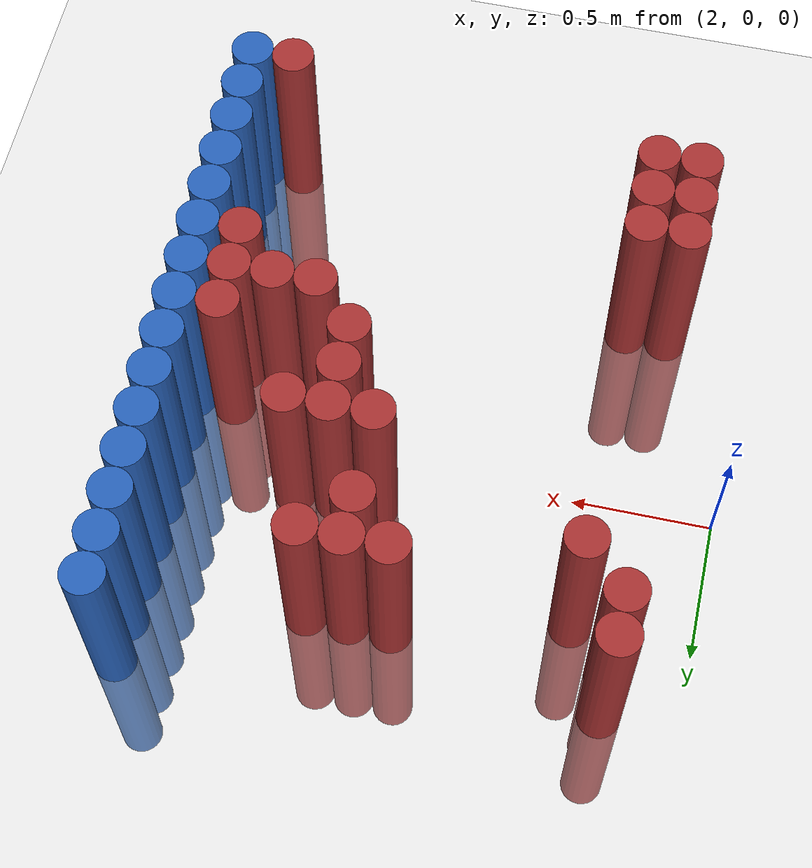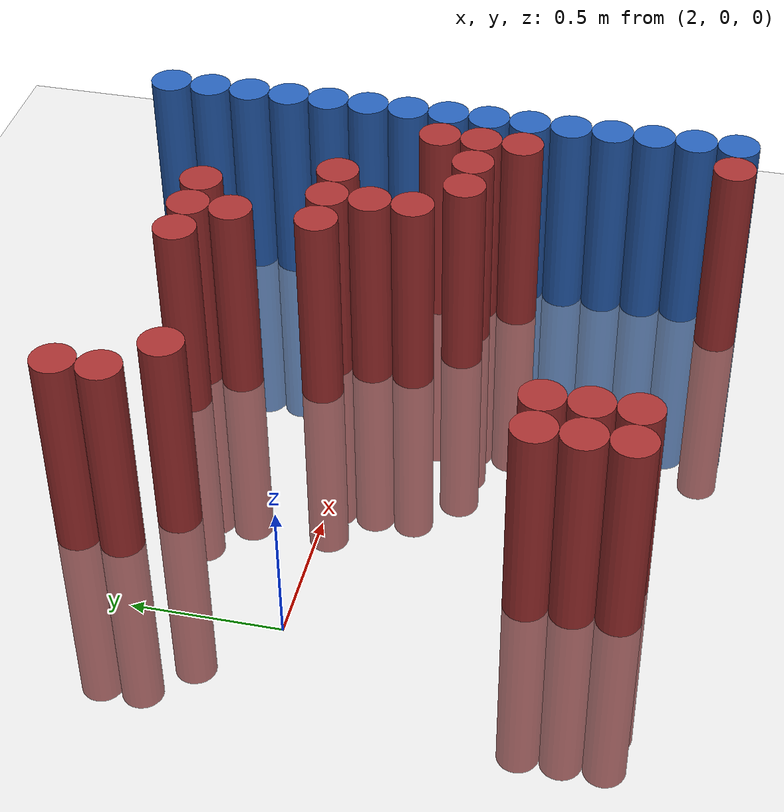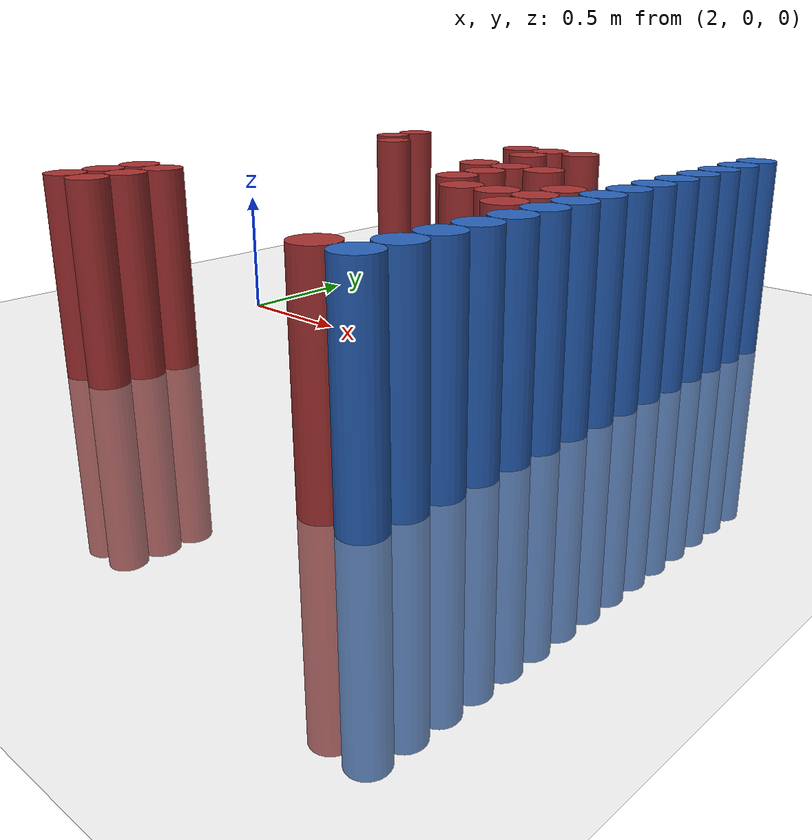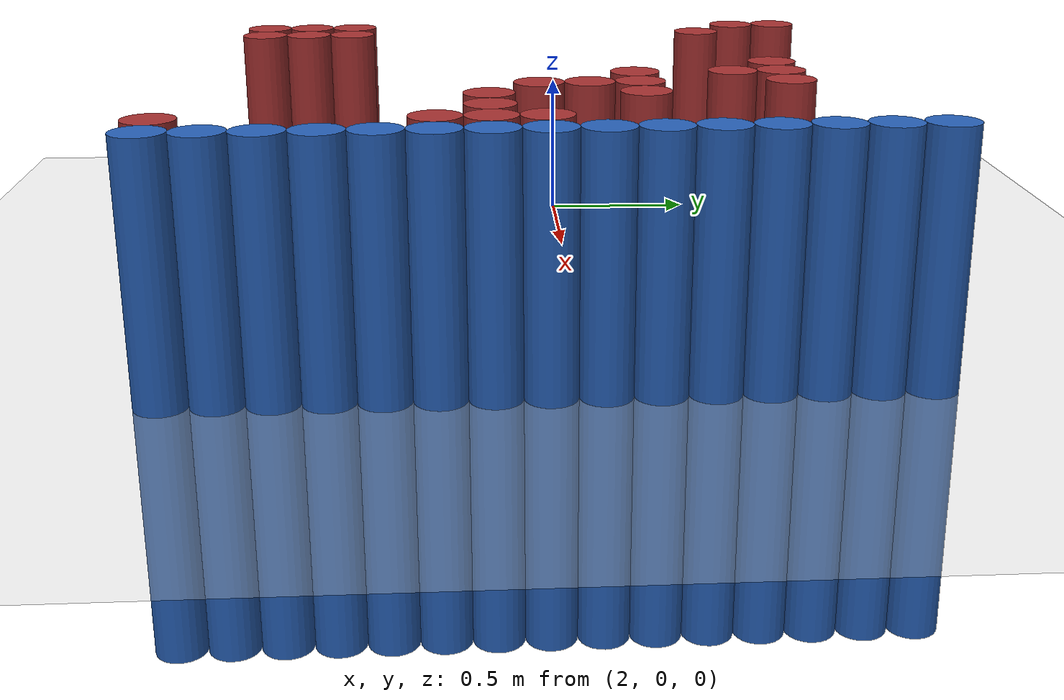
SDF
<sdf version="1.6">
 <world name="default">
  <model name="ground_plane">
   <static>1</static>
   <link name="link">
    <collision name="collision">
     <geometry><plane><normal>0 0 1</normal><size>100 100</size></plane></geometry>
     <surface><friction><ode><mu>100</mu><mu2>50</mu2></ode></friction></surface>
    </collision>
    <visual name="visual">
     <cast_shadows>0</cast_shadows>
     <geometry><plane><normal>0 0 1</normal><size>100 100</size></plane></geometry>
     <material>
      <script><uri>file://media/materials/scripts/gazebo.material</uri><name>Gazebo/Grey</name></script>
     </material>
    </visual>
   </link>
  </model>
  <model name="unit_cylinder_98">
   <static>1</static>
   <pose>3.925000 -1.175000 0.000000 0.000000 0.000000 0.000000</pose>
   <link name="link">
    <inertial>
     <mass>1</mass>
     <inertia><ixx>0.145833</ixx><ixy>0</ixy><ixz>0</ixz><iyy>0.145833</iyy><iyz>0</iyz><izz>0.125</izz></inertia>
    </inertial>
    <collision name="collision">
     <geometry><cylinder><radius>0.075000</radius><length>1.5</length></cylinder></geometry>
    </collision>
    <visual name="visual">
     <geometry><cylinder><radius>0.075000</radius><length>1.5</length></cylinder></geometry>
     <material>
      <ambient>0.152000 0.379000 0.720000 1</ambient>
      <diffuse>0.152000 0.379000 0.720000 1</diffuse>
     </material>
     <material>
      <script><name>Gazebo/Grey</name><uri>file://media/materials/scripts/gazebo.material</uri></script>
     </material>
    </visual>
   </link>
  </model>
  <model name="unit_cylinder_100">
   <static>1</static>
   <pose>3.925000 -1.025000 0.000000 0.000000 0.000000 0.000000</pose>
   <link name="link">
    <inertial>
     <mass>1</mass>
     <inertia><ixx>0.145833</ixx><ixy>0</ixy><ixz>0</ixz><iyy>0.145833</iyy><iyz>0</iyz><izz>0.125</izz></inertia>
    </inertial>
    <collision name="collision">
     <geometry><cylinder><radius>0.075000</radius><length>1.5</length></cylinder></geometry>
    </collision>
    <visual name="visual">
     <geometry><cylinder><radius>0.075000</radius><length>1.5</length></cylinder></geometry>
     <material>
      <ambient>0.152000 0.379000 0.720000 1</ambient>
      <diffuse>0.152000 0.379000 0.720000 1</diffuse>
     </material>
     <material>
      <script><name>Gazebo/Grey</name><uri>file://media/materials/scripts/gazebo.material</uri></script>
     </material>
    </visual>
   </link>
  </model>
  <model name="unit_cylinder_102">
   <static>1</static>
   <pose>3.925000 -0.875000 0.000000 0.000000 0.000000 0.000000</pose>
   <link name="link">
    <inertial>
     <mass>1</mass>
     <inertia><ixx>0.145833</ixx><ixy>0</ixy><ixz>0</ixz><iyy>0.145833</iyy><iyz>0</iyz><izz>0.125</izz></inertia>
    </inertial>
    <collision name="collision">
     <geometry><cylinder><radius>0.075000</radius><length>1.5</length></cylinder></geometry>
    </collision>
    <visual name="visual">
     <geometry><cylinder><radius>0.075000</radius><length>1.5</length></cylinder></geometry>
     <material>
      <ambient>0.152000 0.379000 0.720000 1</ambient>
      <diffuse>0.152000 0.379000 0.720000 1</diffuse>
     </material>
     <material>
      <script><name>Gazebo/Grey</name><uri>file://media/materials/scripts/gazebo.material</uri></script>
     </material>
    </visual>
   </link>
  </model>
  <model name="unit_cylinder_104">
   <static>1</static>
   <pose>3.925000 -0.725000 0.000000 0.000000 0.000000 0.000000</pose>
   <link name="link">
    <inertial>
     <mass>1</mass>
     <inertia><ixx>0.145833</ixx><ixy>0</ixy><ixz>0</ixz><iyy>0.145833</iyy><iyz>0</iyz><izz>0.125</izz></inertia>
    </inertial>
    <collision name="collision">
     <geometry><cylinder><radius>0.075000</radius><length>1.5</length></cylinder></geometry>
    </collision>
    <visual name="visual">
     <geometry><cylinder><radius>0.075000</radius><length>1.5</length></cylinder></geometry>
     <material>
      <ambient>0.152000 0.379000 0.720000 1</ambient>
      <diffuse>0.152000 0.379000 0.720000 1</diffuse>
     </material>
     <material>
      <script><name>Gazebo/Grey</name><uri>file://media/materials/scripts/gazebo.material</uri></script>
     </material>
    </visual>
   </link>
  </model>
  <model name="unit_cylinder_106">
   <static>1</static>
   <pose>3.925000 -0.575000 0.000000 0.000000 0.000000 0.000000</pose>
   <link name="link">
    <inertial>
     <mass>1</mass>
     <inertia><ixx>0.145833</ixx><ixy>0</ixy><ixz>0</ixz><iyy>0.145833</iyy><iyz>0</iyz><izz>0.125</izz></inertia>
    </inertial>
    <collision name="collision">
     <geometry><cylinder><radius>0.075000</radius><length>1.5</length></cylinder></geometry>
    </collision>
    <visual name="visual">
     <geometry><cylinder><radius>0.075000</radius><length>1.5</length></cylinder></geometry>
     <material>
      <ambient>0.152000 0.379000 0.720000 1</ambient>
      <diffuse>0.152000 0.379000 0.720000 1</diffuse>
     </material>
     <material>
      <script><name>Gazebo/Grey</name><uri>file://media/materials/scripts/gazebo.material</uri></script>
     </material>
    </visual>
   </link>
  </model>
  <model name="unit_cylinder_108">
   <static>1</static>
   <pose>3.925000 -0.425000 0.000000 0.000000 0.000000 0.000000</pose>
   <link name="link">
    <inertial>
     <mass>1</mass>
     <inertia><ixx>0.145833</ixx><ixy>0</ixy><ixz>0</ixz><iyy>0.145833</iyy><iyz>0</iyz><izz>0.125</izz></inertia>
    </inertial>
    <collision name="collision">
     <geometry><cylinder><radius>0.075000</radius><length>1.5</length></cylinder></geometry>
    </collision>
    <visual name="visual">
     <geometry><cylinder><radius>0.075000</radius><length>1.5</length></cylinder></geometry>
     <material>
      <ambient>0.152000 0.379000 0.720000 1</ambient>
      <diffuse>0.152000 0.379000 0.720000 1</diffuse>
     </material>
     <material>
      <script><name>Gazebo/Grey</name><uri>file://media/materials/scripts/gazebo.material</uri></script>
     </material>
    </visual>
   </link>
  </model>
  <model name="unit_cylinder_110">
   <static>1</static>
   <pose>3.925000 -0.275000 0.000000 0.000000 0.000000 0.000000</pose>
   <link name="link">
    <inertial>
     <mass>1</mass>
     <inertia><ixx>0.145833</ixx><ixy>0</ixy><ixz>0</ixz><iyy>0.145833</iyy><iyz>0</iyz><izz>0.125</izz></inertia>
    </inertial>
    <collision name="collision">
     <geometry><cylinder><radius>0.075000</radius><length>1.5</length></cylinder></geometry>
    </collision>
    <visual name="visual">
     <geometry><cylinder><radius>0.075000</radius><length>1.5</length></cylinder></geometry>
     <material>
      <ambient>0.152000 0.379000 0.720000 1</ambient>
      <diffuse>0.152000 0.379000 0.720000 1</diffuse>
     </material>
     <material>
      <script><name>Gazebo/Grey</name><uri>file://media/materials/scripts/gazebo.material</uri></script>
     </material>
    </visual>
   </link>
  </model>
  <model name="unit_cylinder_112">
   <static>1</static>
   <pose>3.925000 -0.125000 0.000000 0.000000 0.000000 0.000000</pose>
   <link name="link">
    <inertial>
     <mass>1</mass>
     <inertia><ixx>0.145833</ixx><ixy>0</ixy><ixz>0</ixz><iyy>0.145833</iyy><iyz>0</iyz><izz>0.125</izz></inertia>
    </inertial>
    <collision name="collision">
     <geometry><cylinder><radius>0.075000</radius><length>1.5</length></cylinder></geometry>
    </collision>
    <visual name="visual">
     <geometry><cylinder><radius>0.075000</radius><length>1.5</length></cylinder></geometry>
     <material>
      <ambient>0.152000 0.379000 0.720000 1</ambient>
      <diffuse>0.152000 0.379000 0.720000 1</diffuse>
     </material>
     <material>
      <script><name>Gazebo/Grey</name><uri>file://media/materials/scripts/gazebo.material</uri></script>
     </material>
    </visual>
   </link>
  </model>
  <model name="unit_cylinder_114">
   <static>1</static>
   <pose>3.925000 0.025000 0.000000 0.000000 0.000000 0.000000</pose>
   <link name="link">
    <inertial>
     <mass>1</mass>
     <inertia><ixx>0.145833</ixx><ixy>0</ixy><ixz>0</ixz><iyy>0.145833</iyy><iyz>0</iyz><izz>0.125</izz></inertia>
    </inertial>
    <collision name="collision">
     <geometry><cylinder><radius>0.075000</radius><length>1.5</length></cylinder></geometry>
    </collision>
    <visual name="visual">
     <geometry><cylinder><radius>0.075000</radius><length>1.5</length></cylinder></geometry>
     <material>
      <ambient>0.152000 0.379000 0.720000 1</ambient>
      <diffuse>0.152000 0.379000 0.720000 1</diffuse>
     </material>
     <material>
      <script><name>Gazebo/Grey</name><uri>file://media/materials/scripts/gazebo.material</uri></script>
     </material>
    </visual>
   </link>
  </model>
  <model name="unit_cylinder_116">
   <static>1</static>
   <pose>3.925000 0.175000 0.000000 0.000000 0.000000 0.000000</pose>
   <link name="link">
    <inertial>
     <mass>1</mass>
     <inertia><ixx>0.145833</ixx><ixy>0</ixy><ixz>0</ixz><iyy>0.145833</iyy><iyz>0</iyz><izz>0.125</izz></inertia>
    </inertial>
    <collision name="collision">
     <geometry><cylinder><radius>0.075000</radius><length>1.5</length></cylinder></geometry>
    </collision>
    <visual name="visual">
     <geometry><cylinder><radius>0.075000</radius><length>1.5</length></cylinder></geometry>
     <material>
      <ambient>0.152000 0.379000 0.720000 1</ambient>
      <diffuse>0.152000 0.379000 0.720000 1</diffuse>
     </material>
     <material>
      <script><name>Gazebo/Grey</name><uri>file://media/materials/scripts/gazebo.material</uri></script>
     </material>
    </visual>
   </link>
  </model>
  <model name="unit_cylinder_118">
   <static>1</static>
   <pose>3.925000 0.325000 0.000000 0.000000 0.000000 0.000000</pose>
   <link name="link">
    <inertial>
     <mass>1</mass>
     <inertia><ixx>0.145833</ixx><ixy>0</ixy><ixz>0</ixz><iyy>0.145833</iyy><iyz>0</iyz><izz>0.125</izz></inertia>
    </inertial>
    <collision name="collision">
     <geometry><cylinder><radius>0.075000</radius><length>1.5</length></cylinder></geometry>
    </collision>
    <visual name="visual">
     <geometry><cylinder><radius>0.075000</radius><length>1.5</length></cylinder></geometry>
     <material>
      <ambient>0.152000 0.379000 0.720000 1</ambient>
      <diffuse>0.152000 0.379000 0.720000 1</diffuse>
     </material>
     <material>
      <script><name>Gazebo/Grey</name><uri>file://media/materials/scripts/gazebo.material</uri></script>
     </material>
    </visual>
   </link>
  </model>
  <model name="unit_cylinder_120">
   <static>1</static>
   <pose>3.925000 0.475000 0.000000 0.000000 0.000000 0.000000</pose>
   <link name="link">
    <inertial>
     <mass>1</mass>
     <inertia><ixx>0.145833</ixx><ixy>0</ixy><ixz>0</ixz><iyy>0.145833</iyy><iyz>0</iyz><izz>0.125</izz></inertia>
    </inertial>
    <collision name="collision">
     <geometry><cylinder><radius>0.075000</radius><length>1.5</length></cylinder></geometry>
    </collision>
    <visual name="visual">
     <geometry><cylinder><radius>0.075000</radius><length>1.5</length></cylinder></geometry>
     <material>
      <ambient>0.152000 0.379000 0.720000 1</ambient>
      <diffuse>0.152000 0.379000 0.720000 1</diffuse>
     </material>
     <material>
      <script><name>Gazebo/Grey</name><uri>file://media/materials/scripts/gazebo.material</uri></script>
     </material>
    </visual>
   </link>
  </model>
  <model name="unit_cylinder_122">
   <static>1</static>
   <pose>3.925000 0.625000 0.000000 0.000000 0.000000 0.000000</pose>
   <link name="link">
    <inertial>
     <mass>1</mass>
     <inertia><ixx>0.145833</ixx><ixy>0</ixy><ixz>0</ixz><iyy>0.145833</iyy><iyz>0</iyz><izz>0.125</izz></inertia>
    </inertial>
    <collision name="collision">
     <geometry><cylinder><radius>0.075000</radius><length>1.5</length></cylinder></geometry>
    </collision>
    <visual name="visual">
     <geometry><cylinder><radius>0.075000</radius><length>1.5</length></cylinder></geometry>
     <material>
      <ambient>0.152000 0.379000 0.720000 1</ambient>
      <diffuse>0.152000 0.379000 0.720000 1</diffuse>
     </material>
     <material>
      <script><name>Gazebo/Grey</name><uri>file://media/materials/scripts/gazebo.material</uri></script>
     </material>
    </visual>
   </link>
  </model>
  <model name="unit_cylinder_124">
   <static>1</static>
   <pose>3.925000 0.775000 0.000000 0.000000 0.000000 0.000000</pose>
   <link name="link">
    <inertial>
     <mass>1</mass>
     <inertia><ixx>0.145833</ixx><ixy>0</ixy><ixz>0</ixz><iyy>0.145833</iyy><iyz>0</iyz><izz>0.125</izz></inertia>
    </inertial>
    <collision name="collision">
     <geometry><cylinder><radius>0.075000</radius><length>1.5</length></cylinder></geometry>
    </collision>
    <visual name="visual">
     <geometry><cylinder><radius>0.075000</radius><length>1.5</length></cylinder></geometry>
     <material>
      <ambient>0.152000 0.379000 0.720000 1</ambient>
      <diffuse>0.152000 0.379000 0.720000 1</diffuse>
     </material>
     <material>
      <script><name>Gazebo/Grey</name><uri>file://media/materials/scripts/gazebo.material</uri></script>
     </material>
    </visual>
   </link>
  </model>
  <model name="unit_cylinder_126">
   <static>1</static>
   <pose>3.925000 0.925000 0.000000 0.000000 0.000000 0.000000</pose>
   <link name="link">
    <inertial>
     <mass>1</mass>
     <inertia><ixx>0.145833</ixx><ixy>0</ixy><ixz>0</ixz><iyy>0.145833</iyy><iyz>0</iyz><izz>0.125</izz></inertia>
    </inertial>
    <collision name="collision">
     <geometry><cylinder><radius>0.075000</radius><length>1.5</length></cylinder></geometry>
    </collision>
    <visual name="visual">
     <geometry><cylinder><radius>0.075000</radius><length>1.5</length></cylinder></geometry>
     <material>
      <ambient>0.152000 0.379000 0.720000 1</ambient>
      <diffuse>0.152000 0.379000 0.720000 1</diffuse>
     </material>
     <material>
      <script><name>Gazebo/Grey</name><uri>file://media/materials/scripts/gazebo.material</uri></script>
     </material>
    </visual>
   </link>
  </model>
  <model name="unit_cylinder_420">
   <static>1</static>
   <pose>2.275000 -1.025000 0.000000 0.000000 0.000000 0.000000</pose>
   <link name="link">
    <inertial>
     <mass>1</mass>
     <inertia><ixx>0.145833</ixx><ixy>0</ixy><ixz>0</ixz><iyy>0.145833</iyy><iyz>0</iyz><izz>0.125</izz></inertia>
    </inertial>
    <collision name="collision">
     <geometry><cylinder><radius>0.075000</radius><length>1.5</length></cylinder></geometry>
    </collision>
    <visual name="visual">
     <geometry><cylinder><radius>0.075000</radius><length>1.5</length></cylinder></geometry>
     <material>
      <ambient>0.648000 0.192000 0.192000 1</ambient>
      <diffuse>0.648000 0.192000 0.192000 1</diffuse>
     </material>
     <material>
      <script><name>Gazebo/Grey</name><uri>file://media/materials/scripts/gazebo.material</uri></script>
     </material>
    </visual>
   </link>
  </model>
  <model name="unit_cylinder_421">
   <static>1</static>
   <pose>2.275000 -0.875000 0.000000 0.000000 0.000000 0.000000</pose>
   <link name="link">
    <inertial>
     <mass>1</mass>
     <inertia><ixx>0.145833</ixx><ixy>0</ixy><ixz>0</ixz><iyy>0.145833</iyy><iyz>0</iyz><izz>0.125</izz></inertia>
    </inertial>
    <collision name="collision">
     <geometry><cylinder><radius>0.075000</radius><length>1.5</length></cylinder></geometry>
    </collision>
    <visual name="visual">
     <geometry><cylinder><radius>0.075000</radius><length>1.5</length></cylinder></geometry>
     <material>
      <ambient>0.648000 0.192000 0.192000 1</ambient>
      <diffuse>0.648000 0.192000 0.192000 1</diffuse>
     </material>
     <material>
      <script><name>Gazebo/Grey</name><uri>file://media/materials/scripts/gazebo.material</uri></script>
     </material>
    </visual>
   </link>
  </model>
  <model name="unit_cylinder_422">
   <static>1</static>
   <pose>2.275000 -0.725000 0.000000 0.000000 0.000000 0.000000</pose>
   <link name="link">
    <inertial>
     <mass>1</mass>
     <inertia><ixx>0.145833</ixx><ixy>0</ixy><ixz>0</ixz><iyy>0.145833</iyy><iyz>0</iyz><izz>0.125</izz></inertia>
    </inertial>
    <collision name="collision">
     <geometry><cylinder><radius>0.075000</radius><length>1.5</length></cylinder></geometry>
    </collision>
    <visual name="visual">
     <geometry><cylinder><radius>0.075000</radius><length>1.5</length></cylinder></geometry>
     <material>
      <ambient>0.648000 0.192000 0.192000 1</ambient>
      <diffuse>0.648000 0.192000 0.192000 1</diffuse>
     </material>
     <material>
      <script><name>Gazebo/Grey</name><uri>file://media/materials/scripts/gazebo.material</uri></script>
     </material>
    </visual>
   </link>
  </model>
  <model name="unit_cylinder_423">
   <static>1</static>
   <pose>2.275000 0.625000 0.000000 0.000000 0.000000 0.000000</pose>
   <link name="link">
    <inertial>
     <mass>1</mass>
     <inertia><ixx>0.145833</ixx><ixy>0</ixy><ixz>0</ixz><iyy>0.145833</iyy><iyz>0</iyz><izz>0.125</izz></inertia>
    </inertial>
    <collision name="collision">
     <geometry><cylinder><radius>0.075000</radius><length>1.5</length></cylinder></geometry>
    </collision>
    <visual name="visual">
     <geometry><cylinder><radius>0.075000</radius><length>1.5</length></cylinder></geometry>
     <material>
      <ambient>0.648000 0.192000 0.192000 1</ambient>
      <diffuse>0.648000 0.192000 0.192000 1</diffuse>
     </material>
     <material>
      <script><name>Gazebo/Grey</name><uri>file://media/materials/scripts/gazebo.material</uri></script>
     </material>
    </visual>
   </link>
  </model>
  <model name="unit_cylinder_424">
   <static>1</static>
   <pose>2.275000 0.775000 0.000000 0.000000 0.000000 0.000000</pose>
   <link name="link">
    <inertial>
     <mass>1</mass>
     <inertia><ixx>0.145833</ixx><ixy>0</ixy><ixz>0</ixz><iyy>0.145833</iyy><iyz>0</iyz><izz>0.125</izz></inertia>
    </inertial>
    <collision name="collision">
     <geometry><cylinder><radius>0.075000</radius><length>1.5</length></cylinder></geometry>
    </collision>
    <visual name="visual">
     <geometry><cylinder><radius>0.075000</radius><length>1.5</length></cylinder></geometry>
     <material>
      <ambient>0.648000 0.192000 0.192000 1</ambient>
      <diffuse>0.648000 0.192000 0.192000 1</diffuse>
     </material>
     <material>
      <script><name>Gazebo/Grey</name><uri>file://media/materials/scripts/gazebo.material</uri></script>
     </material>
    </visual>
   </link>
  </model>
  <model name="unit_cylinder_427">
   <static>1</static>
   <pose>2.425000 -1.025000 0.000000 0.000000 0.000000 0.000000</pose>
   <link name="link">
    <inertial>
     <mass>1</mass>
     <inertia><ixx>0.145833</ixx><ixy>0</ixy><ixz>0</ixz><iyy>0.145833</iyy><iyz>0</iyz><izz>0.125</izz></inertia>
    </inertial>
    <collision name="collision">
     <geometry><cylinder><radius>0.075000</radius><length>1.5</length></cylinder></geometry>
    </collision>
    <visual name="visual">
     <geometry><cylinder><radius>0.075000</radius><length>1.5</length></cylinder></geometry>
     <material>
      <ambient>0.648000 0.192000 0.192000 1</ambient>
      <diffuse>0.648000 0.192000 0.192000 1</diffuse>
     </material>
     <material>
      <script><name>Gazebo/Grey</name><uri>file://media/materials/scripts/gazebo.material</uri></script>
     </material>
    </visual>
   </link>
  </model>
  <model name="unit_cylinder_428">
   <static>1</static>
   <pose>2.425000 -0.875000 0.000000 0.000000 0.000000 0.000000</pose>
   <link name="link">
    <inertial>
     <mass>1</mass>
     <inertia><ixx>0.145833</ixx><ixy>0</ixy><ixz>0</ixz><iyy>0.145833</iyy><iyz>0</iyz><izz>0.125</izz></inertia>
    </inertial>
    <collision name="collision">
     <geometry><cylinder><radius>0.075000</radius><length>1.5</length></cylinder></geometry>
    </collision>
    <visual name="visual">
     <geometry><cylinder><radius>0.075000</radius><length>1.5</length></cylinder></geometry>
     <material>
      <ambient>0.648000 0.192000 0.192000 1</ambient>
      <diffuse>0.648000 0.192000 0.192000 1</diffuse>
     </material>
     <material>
      <script><name>Gazebo/Grey</name><uri>file://media/materials/scripts/gazebo.material</uri></script>
     </material>
    </visual>
   </link>
  </model>
  <model name="unit_cylinder_429">
   <static>1</static>
   <pose>2.425000 -0.725000 0.000000 0.000000 0.000000 0.000000</pose>
   <link name="link">
    <inertial>
     <mass>1</mass>
     <inertia><ixx>0.145833</ixx><ixy>0</ixy><ixz>0</ixz><iyy>0.145833</iyy><iyz>0</iyz><izz>0.125</izz></inertia>
    </inertial>
    <collision name="collision">
     <geometry><cylinder><radius>0.075000</radius><length>1.5</length></cylinder></geometry>
    </collision>
    <visual name="visual">
     <geometry><cylinder><radius>0.075000</radius><length>1.5</length></cylinder></geometry>
     <material>
      <ambient>0.648000 0.192000 0.192000 1</ambient>
      <diffuse>0.648000 0.192000 0.192000 1</diffuse>
     </material>
     <material>
      <script><name>Gazebo/Grey</name><uri>file://media/materials/scripts/gazebo.material</uri></script>
     </material>
    </visual>
   </link>
  </model>
  <model name="unit_cylinder_430">
   <static>1</static>
   <pose>2.425000 0.475000 0.000000 0.000000 0.000000 0.000000</pose>
   <link name="link">
    <inertial>
     <mass>1</mass>
     <inertia><ixx>0.145833</ixx><ixy>0</ixy><ixz>0</ixz><iyy>0.145833</iyy><iyz>0</iyz><izz>0.125</izz></inertia>
    </inertial>
    <collision name="collision">
     <geometry><cylinder><radius>0.075000</radius><length>1.5</length></cylinder></geometry>
    </collision>
    <visual name="visual">
     <geometry><cylinder><radius>0.075000</radius><length>1.5</length></cylinder></geometry>
     <material>
      <ambient>0.648000 0.192000 0.192000 1</ambient>
      <diffuse>0.648000 0.192000 0.192000 1</diffuse>
     </material>
     <material>
      <script><name>Gazebo/Grey</name><uri>file://media/materials/scripts/gazebo.material</uri></script>
     </material>
    </visual>
   </link>
  </model>
  <model name="unit_cylinder_431">
   <static>1</static>
   <pose>3.025000 0.625000 0.000000 0.000000 0.000000 0.000000</pose>
   <link name="link">
    <inertial>
     <mass>1</mass>
     <inertia><ixx>0.145833</ixx><ixy>0</ixy><ixz>0</ixz><iyy>0.145833</iyy><iyz>0</iyz><izz>0.125</izz></inertia>
    </inertial>
    <collision name="collision">
     <geometry><cylinder><radius>0.075000</radius><length>1.5</length></cylinder></geometry>
    </collision>
    <visual name="visual">
     <geometry><cylinder><radius>0.075000</radius><length>1.5</length></cylinder></geometry>
     <material>
      <ambient>0.648000 0.192000 0.192000 1</ambient>
      <diffuse>0.648000 0.192000 0.192000 1</diffuse>
     </material>
     <material>
      <script><name>Gazebo/Grey</name><uri>file://media/materials/scripts/gazebo.material</uri></script>
     </material>
    </visual>
   </link>
  </model>
  <model name="unit_cylinder_438">
   <static>1</static>
   <pose>3.175000 0.175000 0.000000 0.000000 0.000000 0.000000</pose>
   <link name="link">
    <inertial>
     <mass>1</mass>
     <inertia><ixx>0.145833</ixx><ixy>0</ixy><ixz>0</ixz><iyy>0.145833</iyy><iyz>0</iyz><izz>0.125</izz></inertia>
    </inertial>
    <collision name="collision">
     <geometry><cylinder><radius>0.075000</radius><length>1.5</length></cylinder></geometry>
    </collision>
    <visual name="visual">
     <geometry><cylinder><radius>0.075000</radius><length>1.5</length></cylinder></geometry>
     <material>
      <ambient>0.648000 0.192000 0.192000 1</ambient>
      <diffuse>0.648000 0.192000 0.192000 1</diffuse>
     </material>
     <material>
      <script><name>Gazebo/Grey</name><uri>file://media/materials/scripts/gazebo.material</uri></script>
     </material>
    </visual>
   </link>
  </model>
  <model name="unit_cylinder_439">
   <static>1</static>
   <pose>3.175000 0.475000 0.000000 0.000000 0.000000 0.000000</pose>
   <link name="link">
    <inertial>
     <mass>1</mass>
     <inertia><ixx>0.145833</ixx><ixy>0</ixy><ixz>0</ixz><iyy>0.145833</iyy><iyz>0</iyz><izz>0.125</izz></inertia>
    </inertial>
    <collision name="collision">
     <geometry><cylinder><radius>0.075000</radius><length>1.5</length></cylinder></geometry>
    </collision>
    <visual name="visual">
     <geometry><cylinder><radius>0.075000</radius><length>1.5</length></cylinder></geometry>
     <material>
      <ambient>0.648000 0.192000 0.192000 1</ambient>
      <diffuse>0.648000 0.192000 0.192000 1</diffuse>
     </material>
     <material>
      <script><name>Gazebo/Grey</name><uri>file://media/materials/scripts/gazebo.material</uri></script>
     </material>
    </visual>
   </link>
  </model>
  <model name="unit_cylinder_440">
   <static>1</static>
   <pose>3.175000 0.625000 0.000000 0.000000 0.000000 0.000000</pose>
   <link name="link">
    <inertial>
     <mass>1</mass>
     <inertia><ixx>0.145833</ixx><ixy>0</ixy><ixz>0</ixz><iyy>0.145833</iyy><iyz>0</iyz><izz>0.125</izz></inertia>
    </inertial>
    <collision name="collision">
     <geometry><cylinder><radius>0.075000</radius><length>1.5</length></cylinder></geometry>
    </collision>
    <visual name="visual">
     <geometry><cylinder><radius>0.075000</radius><length>1.5</length></cylinder></geometry>
     <material>
      <ambient>0.648000 0.192000 0.192000 1</ambient>
      <diffuse>0.648000 0.192000 0.192000 1</diffuse>
     </material>
     <material>
      <script><name>Gazebo/Grey</name><uri>file://media/materials/scripts/gazebo.material</uri></script>
     </material>
    </visual>
   </link>
  </model>
  <model name="unit_cylinder_448">
   <static>1</static>
   <pose>3.325000 -0.125000 0.000000 0.000000 0.000000 0.000000</pose>
   <link name="link">
    <inertial>
     <mass>1</mass>
     <inertia><ixx>0.145833</ixx><ixy>0</ixy><ixz>0</ixz><iyy>0.145833</iyy><iyz>0</iyz><izz>0.125</izz></inertia>
    </inertial>
    <collision name="collision">
     <geometry><cylinder><radius>0.075000</radius><length>1.5</length></cylinder></geometry>
    </collision>
    <visual name="visual">
     <geometry><cylinder><radius>0.075000</radius><length>1.5</length></cylinder></geometry>
     <material>
      <ambient>0.648000 0.192000 0.192000 1</ambient>
      <diffuse>0.648000 0.192000 0.192000 1</diffuse>
     </material>
     <material>
      <script><name>Gazebo/Grey</name><uri>file://media/materials/scripts/gazebo.material</uri></script>
     </material>
    </visual>
   </link>
  </model>
  <model name="unit_cylinder_449">
   <static>1</static>
   <pose>3.325000 0.025000 0.000000 0.000000 0.000000 0.000000</pose>
   <link name="link">
    <inertial>
     <mass>1</mass>
     <inertia><ixx>0.145833</ixx><ixy>0</ixy><ixz>0</ixz><iyy>0.145833</iyy><iyz>0</iyz><izz>0.125</izz></inertia>
    </inertial>
    <collision name="collision">
     <geometry><cylinder><radius>0.075000</radius><length>1.5</length></cylinder></geometry>
    </collision>
    <visual name="visual">
     <geometry><cylinder><radius>0.075000</radius><length>1.5</length></cylinder></geometry>
     <material>
      <ambient>0.648000 0.192000 0.192000 1</ambient>
      <diffuse>0.648000 0.192000 0.192000 1</diffuse>
     </material>
     <material>
      <script><name>Gazebo/Grey</name><uri>file://media/materials/scripts/gazebo.material</uri></script>
     </material>
    </visual>
   </link>
  </model>
  <model name="unit_cylinder_450">
   <static>1</static>
   <pose>3.325000 0.175000 0.000000 0.000000 0.000000 0.000000</pose>
   <link name="link">
    <inertial>
     <mass>1</mass>
     <inertia><ixx>0.145833</ixx><ixy>0</ixy><ixz>0</ixz><iyy>0.145833</iyy><iyz>0</iyz><izz>0.125</izz></inertia>
    </inertial>
    <collision name="collision">
     <geometry><cylinder><radius>0.075000</radius><length>1.5</length></cylinder></geometry>
    </collision>
    <visual name="visual">
     <geometry><cylinder><radius>0.075000</radius><length>1.5</length></cylinder></geometry>
     <material>
      <ambient>0.648000 0.192000 0.192000 1</ambient>
      <diffuse>0.648000 0.192000 0.192000 1</diffuse>
     </material>
     <material>
      <script><name>Gazebo/Grey</name><uri>file://media/materials/scripts/gazebo.material</uri></script>
     </material>
    </visual>
   </link>
  </model>
  <model name="unit_cylinder_451">
   <static>1</static>
   <pose>3.325000 0.625000 0.000000 0.000000 0.000000 0.000000</pose>
   <link name="link">
    <inertial>
     <mass>1</mass>
     <inertia><ixx>0.145833</ixx><ixy>0</ixy><ixz>0</ixz><iyy>0.145833</iyy><iyz>0</iyz><izz>0.125</izz></inertia>
    </inertial>
    <collision name="collision">
     <geometry><cylinder><radius>0.075000</radius><length>1.5</length></cylinder></geometry>
    </collision>
    <visual name="visual">
     <geometry><cylinder><radius>0.075000</radius><length>1.5</length></cylinder></geometry>
     <material>
      <ambient>0.648000 0.192000 0.192000 1</ambient>
      <diffuse>0.648000 0.192000 0.192000 1</diffuse>
     </material>
     <material>
      <script><name>Gazebo/Grey</name><uri>file://media/materials/scripts/gazebo.material</uri></script>
     </material>
    </visual>
   </link>
  </model>
  <model name="unit_cylinder_456">
   <static>1</static>
   <pose>3.475000 -0.275000 0.000000 0.000000 0.000000 0.000000</pose>
   <link name="link">
    <inertial>
     <mass>1</mass>
     <inertia><ixx>0.145833</ixx><ixy>0</ixy><ixz>0</ixz><iyy>0.145833</iyy><iyz>0</iyz><izz>0.125</izz></inertia>
    </inertial>
    <collision name="collision">
     <geometry><cylinder><radius>0.075000</radius><length>1.5</length></cylinder></geometry>
    </collision>
    <visual name="visual">
     <geometry><cylinder><radius>0.075000</radius><length>1.5</length></cylinder></geometry>
     <material>
      <ambient>0.648000 0.192000 0.192000 1</ambient>
      <diffuse>0.648000 0.192000 0.192000 1</diffuse>
     </material>
     <material>
      <script><name>Gazebo/Grey</name><uri>file://media/materials/scripts/gazebo.material</uri></script>
     </material>
    </visual>
   </link>
  </model>
  <model name="unit_cylinder_457">
   <static>1</static>
   <pose>3.475000 0.175000 0.000000 0.000000 0.000000 0.000000</pose>
   <link name="link">
    <inertial>
     <mass>1</mass>
     <inertia><ixx>0.145833</ixx><ixy>0</ixy><ixz>0</ixz><iyy>0.145833</iyy><iyz>0</iyz><izz>0.125</izz></inertia>
    </inertial>
    <collision name="collision">
     <geometry><cylinder><radius>0.075000</radius><length>1.5</length></cylinder></geometry>
    </collision>
    <visual name="visual">
     <geometry><cylinder><radius>0.075000</radius><length>1.5</length></cylinder></geometry>
     <material>
      <ambient>0.648000 0.192000 0.192000 1</ambient>
      <diffuse>0.648000 0.192000 0.192000 1</diffuse>
     </material>
     <material>
      <script><name>Gazebo/Grey</name><uri>file://media/materials/scripts/gazebo.material</uri></script>
     </material>
    </visual>
   </link>
  </model>
  <model name="unit_cylinder_463">
   <static>1</static>
   <pose>3.625000 -0.275000 0.000000 0.000000 0.000000 0.000000</pose>
   <link name="link">
    <inertial>
     <mass>1</mass>
     <inertia><ixx>0.145833</ixx><ixy>0</ixy><ixz>0</ixz><iyy>0.145833</iyy><iyz>0</iyz><izz>0.125</izz></inertia>
    </inertial>
    <collision name="collision">
     <geometry><cylinder><radius>0.075000</radius><length>1.5</length></cylinder></geometry>
    </collision>
    <visual name="visual">
     <geometry><cylinder><radius>0.075000</radius><length>1.5</length></cylinder></geometry>
     <material>
      <ambient>0.648000 0.192000 0.192000 1</ambient>
      <diffuse>0.648000 0.192000 0.192000 1</diffuse>
     </material>
     <material>
      <script><name>Gazebo/Grey</name><uri>file://media/materials/scripts/gazebo.material</uri></script>
     </material>
    </visual>
   </link>
  </model>
  <model name="unit_cylinder_474">
   <static>1</static>
   <pose>3.775000 -1.175000 0.000000 0.000000 0.000000 0.000000</pose>
   <link name="link">
    <inertial>
     <mass>1</mass>
     <inertia><ixx>0.145833</ixx><ixy>0</ixy><ixz>0</ixz><iyy>0.145833</iyy><iyz>0</iyz><izz>0.125</izz></inertia>
    </inertial>
    <collision name="collision">
     <geometry><cylinder><radius>0.075000</radius><length>1.5</length></cylinder></geometry>
    </collision>
    <visual name="visual">
     <geometry><cylinder><radius>0.075000</radius><length>1.5</length></cylinder></geometry>
     <material>
      <ambient>0.648000 0.192000 0.192000 1</ambient>
      <diffuse>0.648000 0.192000 0.192000 1</diffuse>
     </material>
     <material>
      <script><name>Gazebo/Grey</name><uri>file://media/materials/scripts/gazebo.material</uri></script>
     </material>
    </visual>
   </link>
  </model>
  <model name="unit_cylinder_475">
   <static>1</static>
   <pose>3.775000 -0.425000 0.000000 0.000000 0.000000 0.000000</pose>
   <link name="link">
    <inertial>
     <mass>1</mass>
     <inertia><ixx>0.145833</ixx><ixy>0</ixy><ixz>0</ixz><iyy>0.145833</iyy><iyz>0</iyz><izz>0.125</izz></inertia>
    </inertial>
    <collision name="collision">
     <geometry><cylinder><radius>0.075000</radius><length>1.5</length></cylinder></geometry>
    </collision>
    <visual name="visual">
     <geometry><cylinder><radius>0.075000</radius><length>1.5</length></cylinder></geometry>
     <material>
      <ambient>0.648000 0.192000 0.192000 1</ambient>
      <diffuse>0.648000 0.192000 0.192000 1</diffuse>
     </material>
     <material>
      <script><name>Gazebo/Grey</name><uri>file://media/materials/scripts/gazebo.material</uri></script>
     </material>
    </visual>
   </link>
  </model>
  <model name="unit_cylinder_476">
   <static>1</static>
   <pose>3.775000 -0.275000 0.000000 0.000000 0.000000 0.000000</pose>
   <link name="link">
    <inertial>
     <mass>1</mass>
     <inertia><ixx>0.145833</ixx><ixy>0</ixy><ixz>0</ixz><iyy>0.145833</iyy><iyz>0</iyz><izz>0.125</izz></inertia>
    </inertial>
    <collision name="collision">
     <geometry><cylinder><radius>0.075000</radius><length>1.5</length></cylinder></geometry>
    </collision>
    <visual name="visual">
     <geometry><cylinder><radius>0.075000</radius><length>1.5</length></cylinder></geometry>
     <material>
      <ambient>0.648000 0.192000 0.192000 1</ambient>
      <diffuse>0.648000 0.192000 0.192000 1</diffuse>
     </material>
     <material>
      <script><name>Gazebo/Grey</name><uri>file://media/materials/scripts/gazebo.material</uri></script>
     </material>
    </visual>
   </link>
  </model>
  <model name="unit_cylinder_477">
   <static>1</static>
   <pose>3.775000 -0.125000 0.000000 0.000000 0.000000 0.000000</pose>
   <link name="link">
    <inertial>
     <mass>1</mass>
     <inertia><ixx>0.145833</ixx><ixy>0</ixy><ixz>0</ixz><iyy>0.145833</iyy><iyz>0</iyz><izz>0.125</izz></inertia>
    </inertial>
    <collision name="collision">
     <geometry><cylinder><radius>0.075000</radius><length>1.5</length></cylinder></geometry>
    </collision>
    <visual name="visual">
     <geometry><cylinder><radius>0.075000</radius><length>1.5</length></cylinder></geometry>
     <material>
      <ambient>0.648000 0.192000 0.192000 1</ambient>
      <diffuse>0.648000 0.192000 0.192000 1</diffuse>
     </material>
     <material>
      <script><name>Gazebo/Grey</name><uri>file://media/materials/scripts/gazebo.material</uri></script>
     </material>
    </visual>
   </link>
  </model>
  <model name="unit_cylinder_492">
   <static>1</static>
   <pose>3.925000 -1.175000 0.000000 0.000000 0.000000 0.000000</pose>
   <link name="link">
    <inertial>
     <mass>1</mass>
     <inertia><ixx>0.145833</ixx><ixy>0</ixy><ixz>0</ixz><iyy>0.145833</iyy><iyz>0</iyz><izz>0.125</izz></inertia>
    </inertial>
    <collision name="collision">
     <geometry><cylinder><radius>0.075000</radius><length>1.5</length></cylinder></geometry>
    </collision>
    <visual name="visual">
     <geometry><cylinder><radius>0.075000</radius><length>1.5</length></cylinder></geometry>
     <material>
      <ambient>0.152000 0.379000 0.720000 1</ambient>
      <diffuse>0.152000 0.379000 0.720000 1</diffuse>
     </material>
     <material>
      <script><name>Gazebo/Grey</name><uri>file://media/materials/scripts/gazebo.material</uri></script>
     </material>
    </visual>
   </link>
  </model>
  <model name="unit_cylinder_493">
   <static>1</static>
   <pose>3.925000 -1.025000 0.000000 0.000000 0.000000 0.000000</pose>
   <link name="link">
    <inertial>
     <mass>1</mass>
     <inertia><ixx>0.145833</ixx><ixy>0</ixy><ixz>0</ixz><iyy>0.145833</iyy><iyz>0</iyz><izz>0.125</izz></inertia>
    </inertial>
    <collision name="collision">
     <geometry><cylinder><radius>0.075000</radius><length>1.5</length></cylinder></geometry>
    </collision>
    <visual name="visual">
     <geometry><cylinder><radius>0.075000</radius><length>1.5</length></cylinder></geometry>
     <material>
      <ambient>0.152000 0.379000 0.720000 1</ambient>
      <diffuse>0.152000 0.379000 0.720000 1</diffuse>
     </material>
     <material>
      <script><name>Gazebo/Grey</name><uri>file://media/materials/scripts/gazebo.material</uri></script>
     </material>
    </visual>
   </link>
  </model>
  <model name="unit_cylinder_494">
   <static>1</static>
   <pose>3.925000 -0.875000 0.000000 0.000000 0.000000 0.000000</pose>
   <link name="link">
    <inertial>
     <mass>1</mass>
     <inertia><ixx>0.145833</ixx><ixy>0</ixy><ixz>0</ixz><iyy>0.145833</iyy><iyz>0</iyz><izz>0.125</izz></inertia>
    </inertial>
    <collision name="collision">
     <geometry><cylinder><radius>0.075000</radius><length>1.5</length></cylinder></geometry>
    </collision>
    <visual name="visual">
     <geometry><cylinder><radius>0.075000</radius><length>1.5</length></cylinder></geometry>
     <material>
      <ambient>0.152000 0.379000 0.720000 1</ambient>
      <diffuse>0.152000 0.379000 0.720000 1</diffuse>
     </material>
     <material>
      <script><name>Gazebo/Grey</name><uri>file://media/materials/scripts/gazebo.material</uri></script>
     </material>
    </visual>
   </link>
  </model>
  <model name="unit_cylinder_495">
   <static>1</static>
   <pose>3.925000 -0.725000 0.000000 0.000000 0.000000 0.000000</pose>
   <link name="link">
    <inertial>
     <mass>1</mass>
     <inertia><ixx>0.145833</ixx><ixy>0</ixy><ixz>0</ixz><iyy>0.145833</iyy><iyz>0</iyz><izz>0.125</izz></inertia>
    </inertial>
    <collision name="collision">
     <geometry><cylinder><radius>0.075000</radius><length>1.5</length></cylinder></geometry>
    </collision>
    <visual name="visual">
     <geometry><cylinder><radius>0.075000</radius><length>1.5</length></cylinder></geometry>
     <material>
      <ambient>0.152000 0.379000 0.720000 1</ambient>
      <diffuse>0.152000 0.379000 0.720000 1</diffuse>
     </material>
     <material>
      <script><name>Gazebo/Grey</name><uri>file://media/materials/scripts/gazebo.material</uri></script>
     </material>
    </visual>
   </link>
  </model>
  <model name="unit_cylinder_496">
   <static>1</static>
   <pose>3.925000 -0.575000 0.000000 0.000000 0.000000 0.000000</pose>
   <link name="link">
    <inertial>
     <mass>1</mass>
     <inertia><ixx>0.145833</ixx><ixy>0</ixy><ixz>0</ixz><iyy>0.145833</iyy><iyz>0</iyz><izz>0.125</izz></inertia>
    </inertial>
    <collision name="collision">
     <geometry><cylinder><radius>0.075000</radius><length>1.5</length></cylinder></geometry>
    </collision>
    <visual name="visual">
     <geometry><cylinder><radius>0.075000</radius><length>1.5</length></cylinder></geometry>
     <material>
      <ambient>0.152000 0.379000 0.720000 1</ambient>
      <diffuse>0.152000 0.379000 0.720000 1</diffuse>
     </material>
     <material>
      <script><name>Gazebo/Grey</name><uri>file://media/materials/scripts/gazebo.material</uri></script>
     </material>
    </visual>
   </link>
  </model>
  <model name="unit_cylinder_497">
   <static>1</static>
   <pose>3.925000 -0.425000 0.000000 0.000000 0.000000 0.000000</pose>
   <link name="link">
    <inertial>
     <mass>1</mass>
     <inertia><ixx>0.145833</ixx><ixy>0</ixy><ixz>0</ixz><iyy>0.145833</iyy><iyz>0</iyz><izz>0.125</izz></inertia>
    </inertial>
    <collision name="collision">
     <geometry><cylinder><radius>0.075000</radius><length>1.5</length></cylinder></geometry>
    </collision>
    <visual name="visual">
     <geometry><cylinder><radius>0.075000</radius><length>1.5</length></cylinder></geometry>
     <material>
      <ambient>0.152000 0.379000 0.720000 1</ambient>
      <diffuse>0.152000 0.379000 0.720000 1</diffuse>
     </material>
     <material>
      <script><name>Gazebo/Grey</name><uri>file://media/materials/scripts/gazebo.material</uri></script>
     </material>
    </visual>
   </link>
  </model>
  <model name="unit_cylinder_498">
   <static>1</static>
   <pose>3.925000 -0.275000 0.000000 0.000000 0.000000 0.000000</pose>
   <link name="link">
    <inertial>
     <mass>1</mass>
     <inertia><ixx>0.145833</ixx><ixy>0</ixy><ixz>0</ixz><iyy>0.145833</iyy><iyz>0</iyz><izz>0.125</izz></inertia>
    </inertial>
    <collision name="collision">
     <geometry><cylinder><radius>0.075000</radius><length>1.5</length></cylinder></geometry>
    </collision>
    <visual name="visual">
     <geometry><cylinder><radius>0.075000</radius><length>1.5</length></cylinder></geometry>
     <material>
      <ambient>0.152000 0.379000 0.720000 1</ambient>
      <diffuse>0.152000 0.379000 0.720000 1</diffuse>
     </material>
     <material>
      <script><name>Gazebo/Grey</name><uri>file://media/materials/scripts/gazebo.material</uri></script>
     </material>
    </visual>
   </link>
  </model>
  <model name="unit_cylinder_499">
   <static>1</static>
   <pose>3.925000 -0.125000 0.000000 0.000000 0.000000 0.000000</pose>
   <link name="link">
    <inertial>
     <mass>1</mass>
     <inertia><ixx>0.145833</ixx><ixy>0</ixy><ixz>0</ixz><iyy>0.145833</iyy><iyz>0</iyz><izz>0.125</izz></inertia>
    </inertial>
    <collision name="collision">
     <geometry><cylinder><radius>0.075000</radius><length>1.5</length></cylinder></geometry>
    </collision>
    <visual name="visual">
     <geometry><cylinder><radius>0.075000</radius><length>1.5</length></cylinder></geometry>
     <material>
      <ambient>0.152000 0.379000 0.720000 1</ambient>
      <diffuse>0.152000 0.379000 0.720000 1</diffuse>
     </material>
     <material>
      <script><name>Gazebo/Grey</name><uri>file://media/materials/scripts/gazebo.material</uri></script>
     </material>
    </visual>
   </link>
  </model>
  <model name="unit_cylinder_500">
   <static>1</static>
   <pose>3.925000 0.025000 0.000000 0.000000 0.000000 0.000000</pose>
   <link name="link">
    <inertial>
     <mass>1</mass>
     <inertia><ixx>0.145833</ixx><ixy>0</ixy><ixz>0</ixz><iyy>0.145833</iyy><iyz>0</iyz><izz>0.125</izz></inertia>
    </inertial>
    <collision name="collision">
     <geometry><cylinder><radius>0.075000</radius><length>1.5</length></cylinder></geometry>
    </collision>
    <visual name="visual">
     <geometry><cylinder><radius>0.075000</radius><length>1.5</length></cylinder></geometry>
     <material>
      <ambient>0.152000 0.379000 0.720000 1</ambient>
      <diffuse>0.152000 0.379000 0.720000 1</diffuse>
     </material>
     <material>
      <script><name>Gazebo/Grey</name><uri>file://media/materials/scripts/gazebo.material</uri></script>
     </material>
    </visual>
   </link>
  </model>
  <model name="unit_cylinder_501">
   <static>1</static>
   <pose>3.925000 0.175000 0.000000 0.000000 0.000000 0.000000</pose>
   <link name="link">
    <inertial>
     <mass>1</mass>
     <inertia><ixx>0.145833</ixx><ixy>0</ixy><ixz>0</ixz><iyy>0.145833</iyy><iyz>0</iyz><izz>0.125</izz></inertia>
    </inertial>
    <collision name="collision">
     <geometry><cylinder><radius>0.075000</radius><length>1.5</length></cylinder></geometry>
    </collision>
    <visual name="visual">
     <geometry><cylinder><radius>0.075000</radius><length>1.5</length></cylinder></geometry>
     <material>
      <ambient>0.152000 0.379000 0.720000 1</ambient>
      <diffuse>0.152000 0.379000 0.720000 1</diffuse>
     </material>
     <material>
      <script><name>Gazebo/Grey</name><uri>file://media/materials/scripts/gazebo.material</uri></script>
     </material>
    </visual>
   </link>
  </model>
  <model name="unit_cylinder_502">
   <static>1</static>
   <pose>3.925000 0.325000 0.000000 0.000000 0.000000 0.000000</pose>
   <link name="link">
    <inertial>
     <mass>1</mass>
     <inertia><ixx>0.145833</ixx><ixy>0</ixy><ixz>0</ixz><iyy>0.145833</iyy><iyz>0</iyz><izz>0.125</izz></inertia>
    </inertial>
    <collision name="collision">
     <geometry><cylinder><radius>0.075000</radius><length>1.5</length></cylinder></geometry>
    </collision>
    <visual name="visual">
     <geometry><cylinder><radius>0.075000</radius><length>1.5</length></cylinder></geometry>
     <material>
      <ambient>0.152000 0.379000 0.720000 1</ambient>
      <diffuse>0.152000 0.379000 0.720000 1</diffuse>
     </material>
     <material>
      <script><name>Gazebo/Grey</name><uri>file://media/materials/scripts/gazebo.material</uri></script>
     </material>
    </visual>
   </link>
  </model>
  <model name="unit_cylinder_503">
   <static>1</static>
   <pose>3.925000 0.475000 0.000000 0.000000 0.000000 0.000000</pose>
   <link name="link">
    <inertial>
     <mass>1</mass>
     <inertia><ixx>0.145833</ixx><ixy>0</ixy><ixz>0</ixz><iyy>0.145833</iyy><iyz>0</iyz><izz>0.125</izz></inertia>
    </inertial>
    <collision name="collision">
     <geometry><cylinder><radius>0.075000</radius><length>1.5</length></cylinder></geometry>
    </collision>
    <visual name="visual">
     <geometry><cylinder><radius>0.075000</radius><length>1.5</length></cylinder></geometry>
     <material>
      <ambient>0.152000 0.379000 0.720000 1</ambient>
      <diffuse>0.152000 0.379000 0.720000 1</diffuse>
     </material>
     <material>
      <script><name>Gazebo/Grey</name><uri>file://media/materials/scripts/gazebo.material</uri></script>
     </material>
    </visual>
   </link>
  </model>
  <model name="unit_cylinder_504">
   <static>1</static>
   <pose>3.925000 0.625000 0.000000 0.000000 0.000000 0.000000</pose>
   <link name="link">
    <inertial>
     <mass>1</mass>
     <inertia><ixx>0.145833</ixx><ixy>0</ixy><ixz>0</ixz><iyy>0.145833</iyy><iyz>0</iyz><izz>0.125</izz></inertia>
    </inertial>
    <collision name="collision">
     <geometry><cylinder><radius>0.075000</radius><length>1.5</length></cylinder></geometry>
    </collision>
    <visual name="visual">
     <geometry><cylinder><radius>0.075000</radius><length>1.5</length></cylinder></geometry>
     <material>
      <ambient>0.152000 0.379000 0.720000 1</ambient>
      <diffuse>0.152000 0.379000 0.720000 1</diffuse>
     </material>
     <material>
      <script><name>Gazebo/Grey</name><uri>file://media/materials/scripts/gazebo.material</uri></script>
     </material>
    </visual>
   </link>
  </model>
  <model name="unit_cylinder_505">
   <static>1</static>
   <pose>3.925000 0.775000 0.000000 0.000000 0.000000 0.000000</pose>
   <link name="link">
    <inertial>
     <mass>1</mass>
     <inertia><ixx>0.145833</ixx><ixy>0</ixy><ixz>0</ixz><iyy>0.145833</iyy><iyz>0</iyz><izz>0.125</izz></inertia>
    </inertial>
    <collision name="collision">
     <geometry><cylinder><radius>0.075000</radius><length>1.5</length></cylinder></geometry>
    </collision>
    <visual name="visual">
     <geometry><cylinder><radius>0.075000</radius><length>1.5</length></cylinder></geometry>
     <material>
      <ambient>0.152000 0.379000 0.720000 1</ambient>
      <diffuse>0.152000 0.379000 0.720000 1</diffuse>
     </material>
     <material>
      <script><name>Gazebo/Grey</name><uri>file://media/materials/scripts/gazebo.material</uri></script>
     </material>
    </visual>
   </link>
  </model>
 </world>
</sdf>
